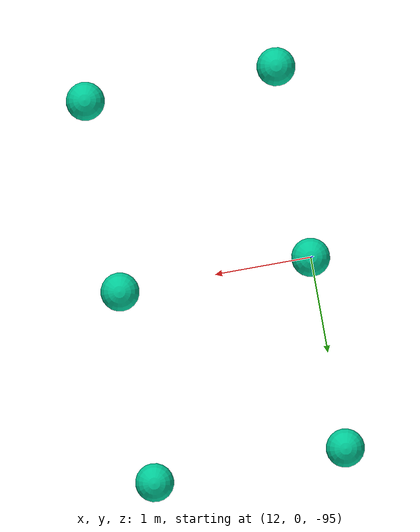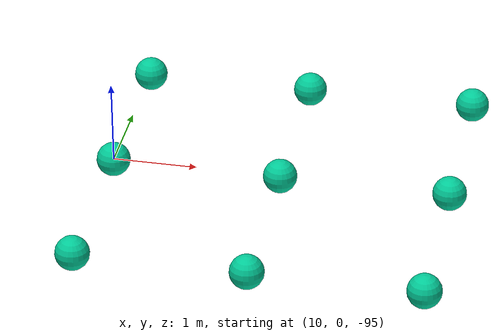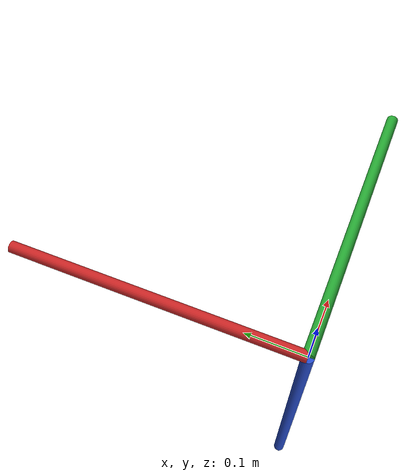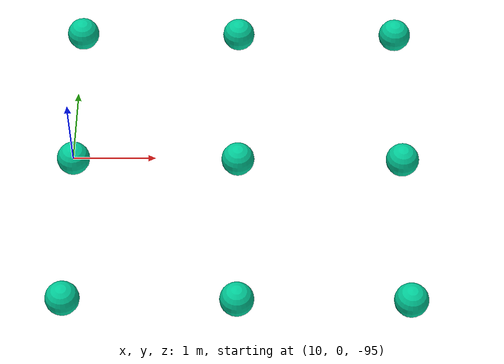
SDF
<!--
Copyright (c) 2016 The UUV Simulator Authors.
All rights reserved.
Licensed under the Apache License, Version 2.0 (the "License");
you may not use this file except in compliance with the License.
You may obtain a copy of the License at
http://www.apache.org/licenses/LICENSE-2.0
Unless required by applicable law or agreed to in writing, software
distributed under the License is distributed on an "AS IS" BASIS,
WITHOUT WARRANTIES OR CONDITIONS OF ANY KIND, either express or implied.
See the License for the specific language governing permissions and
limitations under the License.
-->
<sdf version="1.4">
 <world name="oceans_waves">
  <physics name="default_physics" default="true" type="ode">
   <max_step_size>0.002</max_step_size>
   <real_time_factor>1</real_time_factor>
   <real_time_update_rate>500</real_time_update_rate>
  </physics>
  <scene>
   <ambient>0.01 0.01 0.01 1.0</ambient>
   <sky><clouds><speed>12</speed></clouds></sky>
   <shadows>1</shadows>
  </scene>
  <gravity>0 0 -10</gravity>
  <spherical_coordinates>
   <longitude_deg>76.4334063</longitude_deg>
   <latitude_deg>-40.8458253</latitude_deg>
  </spherical_coordinates>
  <light type="directional" name="sun1">
   <pose>50 0 150 0 0 0</pose>
   <diffuse>1 1 1 1</diffuse>
   <specular>.1 .1 .1 1</specular>
   <direction>0.3 0.3 -1</direction>
   <cast_shadows>false</cast_shadows>
  </light>
  <light type="directional" name="sun_diffuse">
   <pose>-50 0 -150 0 0 0</pose>
   <diffuse>0.6 0.6 0.6 1</diffuse>
   <specular>0 0 0 1</specular>
   <direction>-0.3 -0.3 -1</direction>
   <cast_shadows>false</cast_shadows>
  </light>
  <include><uri>model://ned_frame</uri></include>
  <include><name>sphere1</name><pose>10 -2 -95 0 0 0</pose><uri>model://sphere_target</uri></include>
  <include><name>sphere2</name><pose>10 0 -95 0 0 0</pose><uri>model://sphere_target</uri></include>
  <include><name>sphere3</name><pose>10 2 -95 0 0 0</pose><uri>model://sphere_target</uri></include>
  <include><name>sphere4</name><pose>12 -2 -95 0 0 0</pose><uri>model://sphere_target</uri></include>
  <include><name>sphere5</name><pose>12 0 -95 0 0 0</pose><uri>model://sphere_target</uri></include>
  <include><name>sphere6</name><pose>12 2 -95 0 0 0</pose><uri>model://sphere_target</uri></include>
  <include><name>sphere7</name><pose>14 -2 -95 0 0 0</pose><uri>model://sphere_target</uri></include>
  <include><name>sphere8</name><pose>14 0 -95 0 0 0</pose><uri>model://sphere_target</uri></include>
  <include><name>sphere9</name><pose>14 2 -95 0 0 0</pose><uri>model://sphere_target</uri></include>
  <plugin name="sc_interface" filename="libuuv_sc_ros_interface_plugin.so"/>
 </world>
</sdf>

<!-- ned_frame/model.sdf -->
<sdf version='1.5'>
    <model name="world_ned">

      <pose>0 0 0 0 0 0</pose>
      <static>true</static>

      <link name="world_ned">
        <gravity>0</gravity>
        <pose>0 0 0 3.14159265359 0 1.5707963267948966</pose>

        <visual name="N_visual">
          <pose>0.25 0 0 1.5707963267948966 0 1.5707963267948966</pose>
          <geometry>
            <cylinder>
              <radius>0.01</radius>
              <length>0.5</length>
            </cylinder>
          </geometry>
          <material>
            <script>
              <uri>file://media/materials/scripts/gazebo.material</uri>
              <name>Gazebo/Red</name>
            </script>
          </material>
        </visual>

        <visual name="E_visual">
          <pose>0 0.25 0 1.5707963267948966 0 0</pose>
          <geometry>
            <cylinder>
              <radius>0.01</radius>
              <length>0.5</length>
            </cylinder>
          </geometry>
          <material>
            <script>
              <uri>file://media/materials/scripts/gazebo.material</uri>
              <name>Gazebo/Green</name>
            </script>
          </material>
        </visual>

        <visual name="D_visual">
          <pose>0 0 0.25 0 0 0</pose>
          <geometry>
            <cylinder>
              <radius>0.01</radius>
              <length>0.5</length>
            </cylinder>
          </geometry>
          <material>
            <script>
              <uri>file://media/materials/scripts/gazebo.material</uri>
              <name>Gazebo/Blue</name>
            </script>
          </material>
        </visual>
      </link>
    </model>
</sdf>

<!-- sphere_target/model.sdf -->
<sdf version='1.6'>
  <model name='sphere_target'>
    <link name='link_0'>
      <pose frame=''>0 0 0 0 -0 0</pose>
      <inertial>
        <mass>0.1</mass>
        <inertia>
          <ixx>0.07</ixx>
          <ixy>0</ixy>
          <ixz>0</ixz>
          <iyy>0.1</iyy>
          <iyz>0</iyz>
          <izz>0.1</izz>
        </inertia>
        <pose frame=''>0 0 0 0 -0 0</pose>
      </inertial>
      <gravity>0</gravity>
      <self_collide>0</self_collide>
      <kinematic>0</kinematic>
      <visual name='ModelPreview_0::link_0::visual_7'>
        <pose frame=''>0 0 0 0 -0 0</pose>
        <geometry>
          <sphere>
            <radius>0.201</radius>
          </sphere>
        </geometry>
        <material>
          <lighting>1</lighting>
          <script>
            <uri>file://media/materials/scripts/gazebo.material</uri>
            <name>Gazebo/Grey</name>
          </script>
          <ambient>0 0.8 0.6 1</ambient>
          <diffuse>0 0.8 0.6 1</diffuse>
          <specular>0 0.8 0.6 1</specular>
          <emissive>0 0 0 1</emissive>
          <shader type='vertex'>
            <normal_map>__default__</normal_map>
          </shader>
        </material>
        <cast_shadows>1</cast_shadows>
        <transparency>0</transparency>
      </visual>
      <visual name='ModelPreview_0::link_0::visual_6'>
        <pose frame=''>0 0 0 0 -0 0</pose>
        <geometry>
          <sphere>
            <radius>0.201</radius>
          </sphere>
        </geometry>
        <material>
          <lighting>1</lighting>
          <script>
            <uri>file://media/materials/scripts/gazebo.material</uri>
            <name>Gazebo/Grey</name>
          </script>
          <ambient>0 0.8 0.6 1</ambient>
          <diffuse>0 0.8 0.6 1</diffuse>
          <specular>0 0.8 0.6 1</specular>
          <emissive>0 0 0 1</emissive>
          <shader type='vertex'>
            <normal_map>__default__</normal_map>
          </shader>
        </material>
        <cast_shadows>1</cast_shadows>
        <transparency>1</transparency>
      </visual>
      <visual name='visual'>
        <pose frame=''>0 0 0 0 -0 0</pose>
        <geometry>
          <sphere>
            <radius>0.201</radius>
          </sphere>
        </geometry>
        <material>
          <lighting>1</lighting>
          <script>
            <uri>file://media/materials/scripts/gazebo.material</uri>
            <name>Gazebo/Grey</name>
          </script>
          <ambient>0 0.8 0.6 1</ambient>
          <diffuse>0 0.8 0.6 1</diffuse>
          <specular>0 0.8 0.6 1</specular>
          <emissive>0 0.8 0.6 1</emissive>
          <shader type='vertex'>
            <normal_map>__default__</normal_map>
          </shader>
        </material>
        <cast_shadows>1</cast_shadows>
        <transparency>0</transparency>
      </visual>
      <visual name='ModelPreview_0::link_0::visual_5'>
        <pose frame=''>0 0 0 0 -0 0</pose>
        <geometry>
          <sphere>
            <radius>0.201</radius>
          </sphere>
        </geometry>
        <material>
          <lighting>1</lighting>
          <script>
            <uri>file://media/materials/scripts/gazebo.material</uri>
            <name>Gazebo/Grey</name>
          </script>
          <ambient>0 0.8 0.6 1</ambient>
          <diffuse>0 0.8 0.6 1</diffuse>
          <specular>0 0.8 0.6 1</specular>
          <emissive>0 0 0 1</emissive>
          <shader type='vertex'>
            <normal_map>__default__</normal_map>
          </shader>
        </material>
        <cast_shadows>1</cast_shadows>
        <transparency>0</transparency>
      </visual>
    </link>
    <static>0</static>
    <allow_auto_disable>1</allow_auto_disable>
  </model>
</sdf>
